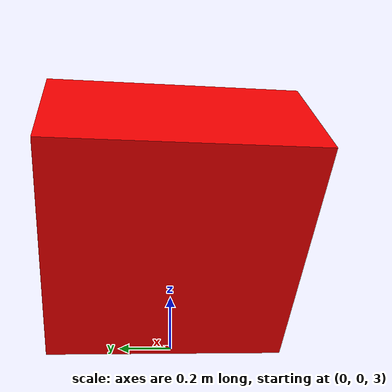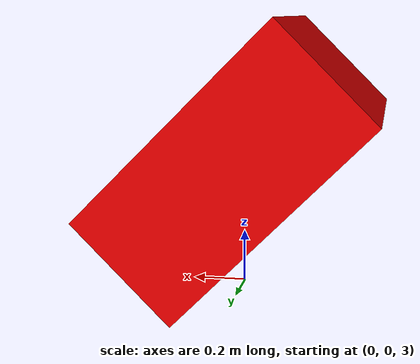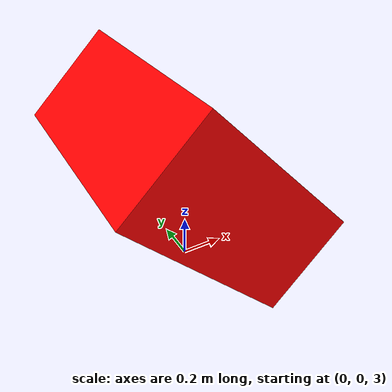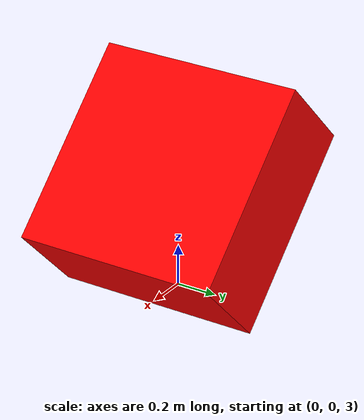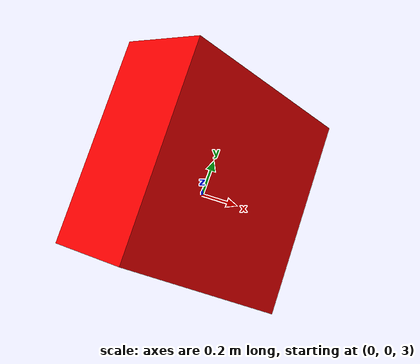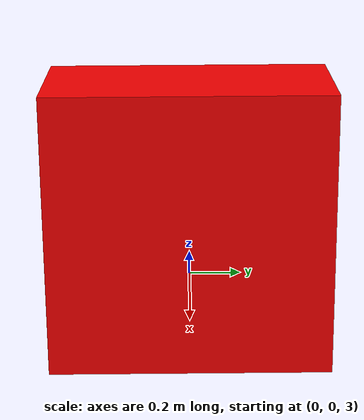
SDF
<?xml version="1.0" ?>
<sdf version="1.7">

    <model name="object">
      <static>true</static>
      <pose>0 0 3.5 0 0.78539816339 0</pose>
      <link name="box_link">
        <inertial>
          <inertia>
            <ixx>1</ixx>
            <ixy>0</ixy>
            <ixz>0</ixz>
            <iyy>1</iyy>
            <iyz>0</iyz>
            <izz>1</izz>
          </inertia>
          <mass>1.0</mass>
        </inertial>
        <collision name="box_collision">
          <geometry>
            <box>
              <size>1 1 0.5</size>
            </box>
          </geometry>
        </collision>

        <visual name="box_visual">
          <geometry>
            <box>
              <size>1 1 0.5</size>
            </box>
          </geometry>
          <material>
            <ambient>1 0 0 1</ambient>
            <diffuse>1 0 0 1</diffuse>
            <specular>1 0 0 1</specular>
          </material>
        </visual>
      </link>
    </model>

</sdf>
